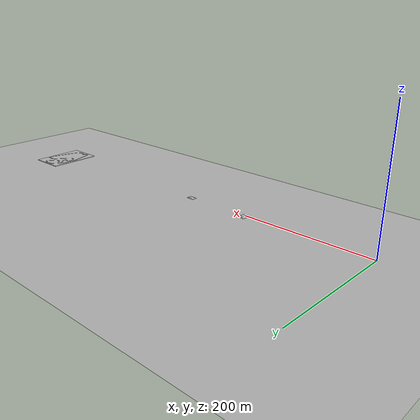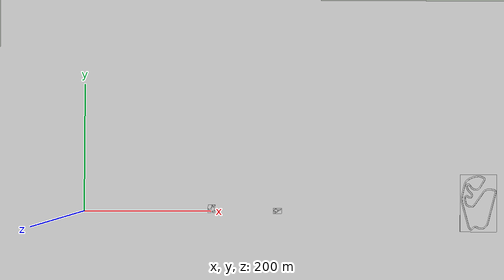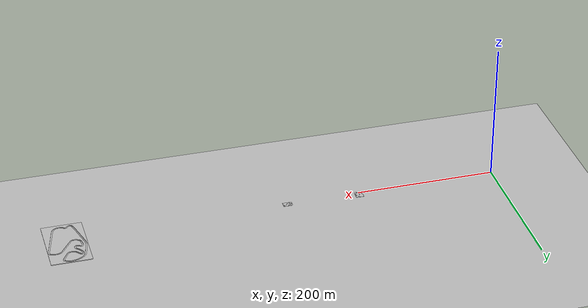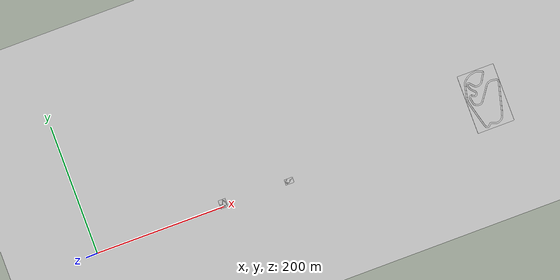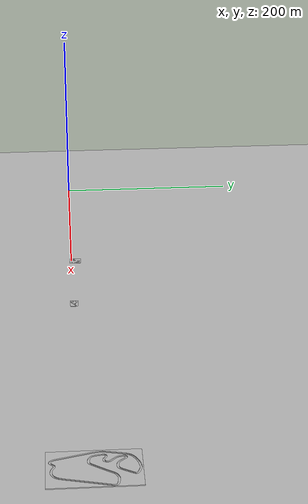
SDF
<sdf version="1.6">
 <world name="empty">
  <physics name="1ms" type="ignored">
   <max_step_size>0.001</max_step_size>
   <real_time_factor>10.0</real_time_factor>
  </physics>
  <plugin filename="gz-sim-physics-system" name="gz::sim::systems::Physics"/>
  <plugin filename="gz-sim-sensors-system" name="gz::sim::systems::Sensors">
   <render_engine>ogre2</render_engine>
  </plugin>
  <plugin filename="gz-sim-user-commands-system" name="gz::sim::systems::UserCommands"/>
  <plugin filename="gz-sim-scene-broadcaster-system" name="gz::sim::systems::SceneBroadcaster"/>
  <light type="directional" name="sun">
   <pose>0 0 10 0 0 0</pose>
   <diffuse>1 1 1 1</diffuse>
   <specular>0.5 0.5 0.5 1</specular>
   <attenuation>
    <range>1000</range>
    <constant>0.9</constant>
    <linear>0.01</linear>
    <quadratic>0.001</quadratic>
   </attenuation>
   <direction>-0.5 0.1 -0.9</direction>
  </light>
  <model name="austin_ground_plane">
   <pose>300 0 0 0 0 0</pose>
   <static>true</static>
   <link name="link">
    <collision name="collision">
     <geometry><plane><normal>0 0 1</normal><size>3000 3000</size></plane></geometry>
     <surface>
      <friction>
       <ode><mu>50</mu></ode>
       <bullet><friction>1</friction><rolling_friction>0.1</rolling_friction></bullet>
      </friction>
     </surface>
    </collision>
    <visual name="visual">
     <geometry><plane><normal>0 0 1</normal><size>1000 1000</size></plane></geometry>
     <material>
      <ambient>0.8 0.8 0.8 1</ambient>
      <diffuse>0.8 0.8 0.8 1</diffuse>
      <specular>0.8 0.8 0.8 1</specular>
     </material>
    </visual>
   </link>
  </model>
  <model name="austin_track">
   <static>true</static>
   <link name="track">
    <visual name="track_vis">
     <geometry>
      <mesh>
       <uri>/home/anyone/autonomous_f1tenth/src/environments/meshes/austin_track.stl</uri>
       <scale>0.001 0.001 0.001</scale>
      </mesh>
     </geometry>
     <material>
      <ambient>0.8 0.8 0.8 1</ambient>
      <diffuse>0.8 0.8 0.8 1</diffuse>
      <specular>0.8 0.8 0.8 1</specular>
     </material>
    </visual>
    <collision name="track_col">
     <geometry>
      <mesh>
       <uri>/home/anyone/autonomous_f1tenth/src/environments/meshes/austin_track.stl</uri>
       <scale>0.001 0.001 0.001</scale>
      </mesh>
     </geometry>
    </collision>
   </link>
  </model>
  <model name="budapest_track">
   <pose>200 0 0 0 0 0</pose>
   <static>true</static>
   <link name="track">
    <visual name="track_vis">
     <geometry>
      <mesh>
       <uri>/home/anyone/autonomous_f1tenth/src/environments/meshes/budapest_track.stl</uri>
       <scale>0.001 0.001 0.001</scale>
      </mesh>
     </geometry>
     <material>
      <ambient>0.8 0.8 0.8 1</ambient>
      <diffuse>0.8 0.8 0.8 1</diffuse>
      <specular>0.8 0.8 0.8 1</specular>
     </material>
    </visual>
    <collision name="track_col">
     <geometry>
      <mesh>
       <uri>/home/anyone/autonomous_f1tenth/src/environments/meshes/budapest_track.stl</uri>
       <scale>0.001 0.001 0.001</scale>
      </mesh>
     </geometry>
    </collision>
   </link>
  </model>
  <model name="hockenheim_track">
   <static>true</static>
   <pose>300 0 0 0 0 0</pose>
   <link name="track">
    <visual name="track_vis">
     <geometry>
      <mesh>
       <uri>/home/anyone/autonomous_f1tenth/src/environments/meshes/hockenheim_track.stl</uri>
       <scale>0.001 0.001 0.001</scale>
      </mesh>
     </geometry>
     <material>
      <ambient>0.8 0.8 0.8 1</ambient>
      <diffuse>0.8 0.8 0.8 1</diffuse>
      <specular>0.8 0.8 0.8 1</specular>
     </material>
    </visual>
    <collision name="track_col">
     <geometry>
      <mesh>
       <uri>/home/anyone/autonomous_f1tenth/src/environments/meshes/hockenheim_track.stl</uri>
       <scale>0.001 0.001 0.001</scale>
      </mesh>
     </geometry>
    </collision>
   </link>
  </model>
  <model name="saopaolo_track">
   <pose>600 0 0 0 0 0</pose>
   <static>true</static>
   <link name="track">
    <visual name="track_vis">
     <geometry>
      <mesh>
       <uri>/home/anyone/autonomous_f1tenth/src/environments/meshes/saopaolo_track.stl</uri>
       <scale>0.001 0.001 0.001</scale>
      </mesh>
     </geometry>
     <material>
      <ambient>0.8 0.8 0.8 1</ambient>
      <diffuse>0.8 0.8 0.8 1</diffuse>
      <specular>0.8 0.8 0.8 1</specular>
     </material>
    </visual>
    <collision name="track_col">
     <geometry>
      <mesh>
       <uri>/home/anyone/autonomous_f1tenth/src/environments/meshes/saopaolo_track.stl</uri>
       <scale>0.001 0.001 0.001</scale>
      </mesh>
     </geometry>
    </collision>
   </link>
  </model>
 </world>
</sdf>
